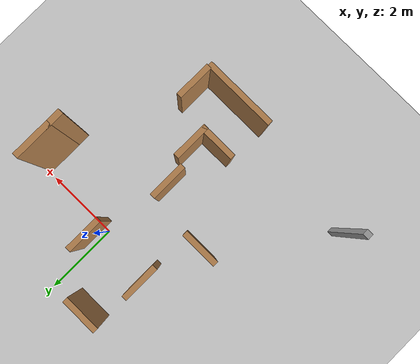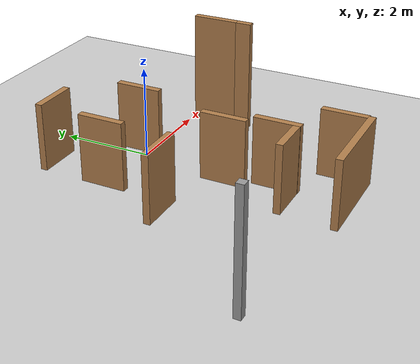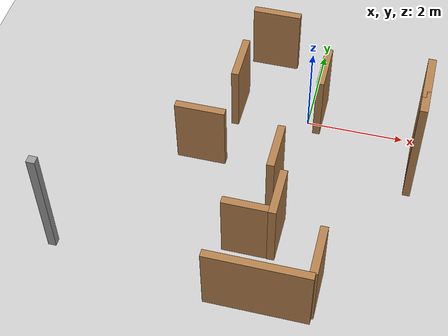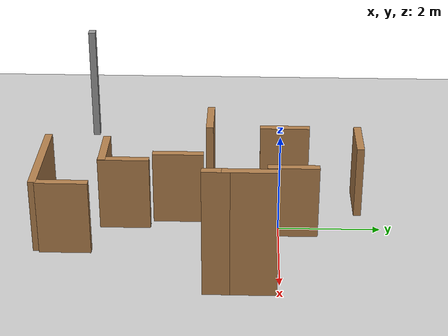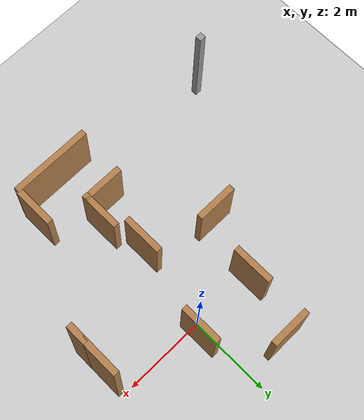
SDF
<sdf version="1.6">
 <world name="default">
  <model name="ground_plane">
   <static>1</static>
   <link name="link">
    <collision name="collision">
     <geometry><plane><normal>0 0 1</normal><size>100 100</size></plane></geometry>
     <surface><friction><ode><mu>100</mu><mu2>50</mu2></ode></friction></surface>
    </collision>
    <visual name="visual">
     <cast_shadows>0</cast_shadows>
     <geometry><plane><normal>0 0 1</normal><size>100 100</size></plane></geometry>
     <material>
      <script><uri>file://media/materials/scripts/gazebo.material</uri><name>Gazebo/Grey</name></script>
     </material>
    </visual>
   </link>
  </model>
  <model name="V_0">
   <pose>-1.92059 -1.40453 0 0 -0 0</pose>
   <link name="Wall_48">
    <collision name="Wall_48_Collision">
     <geometry><box><size>1 0.15 1.5</size></box></geometry>
     <pose>0 0 0.75 0 -0 0</pose>
    </collision>
    <visual name="Wall_48_Visual">
     <pose>0 0 0.75 0 -0 0</pose>
     <geometry><box><size>1 0.15 1.5</size></box></geometry>
     <material>
      <script><uri>file://media/materials/scripts/gazebo.material</uri><name>Gazebo/Wood</name></script>
      <ambient>1 1 1 1</ambient>
     </material>
     <meta><layer>0</layer></meta>
    </visual>
   </link>
   <static>1</static>
  </model>
  <model name="V_1">
   <pose>-1.04403 1.59361 0 0 -0 0</pose>
   <link name="Wall_48">
    <collision name="Wall_48_Collision">
     <geometry><box><size>1 0.15 1.5</size></box></geometry>
     <pose>0 0 0.75 0 -0 0</pose>
    </collision>
    <visual name="Wall_48_Visual">
     <pose>0 0 0.75 0 -0 0</pose>
     <geometry><box><size>1 0.15 1.5</size></box></geometry>
     <material>
      <script><uri>file://media/materials/scripts/gazebo.material</uri><name>Gazebo/Wood</name></script>
      <ambient>1 1 1 1</ambient>
     </material>
     <meta><layer>0</layer></meta>
    </visual>
   </link>
   <static>1</static>
  </model>
  <model name="HO_0">
   <pose>0.218896 0.2622 0 0 -0 0</pose>
   <link name="Wall_54">
    <collision name="Wall_54_Collision">
     <geometry><box><size>1 0.15 1.5</size></box></geometry>
     <pose>0 0 0.75 0 -0 0</pose>
    </collision>
    <visual name="Wall_54_Visual">
     <pose>0 0 0.75 0 -0 0</pose>
     <geometry><box><size>1 0.15 1.5</size></box></geometry>
     <material>
      <script><uri>file://media/materials/scripts/gazebo.material</uri><name>Gazebo/Wood</name></script>
      <ambient>1 1 1 1</ambient>
     </material>
     <meta><layer>0</layer></meta>
    </visual>
    <pose>0 0 0 0 -0 -1.5708</pose>
   </link>
   <static>1</static>
  </model>
  <model name="HO_1">
   <pose>-0.284507 -1.97832 0 0 -0 0</pose>
   <link name="Wall_54">
    <collision name="Wall_54_Collision">
     <geometry><box><size>1 0.15 1.5</size></box></geometry>
     <pose>0 0 0.75 0 -0 0</pose>
    </collision>
    <visual name="Wall_54_Visual">
     <pose>0 0 0.75 0 -0 0</pose>
     <geometry><box><size>1 0.15 1.5</size></box></geometry>
     <material>
      <script><uri>file://media/materials/scripts/gazebo.material</uri><name>Gazebo/Wood</name></script>
      <ambient>1 1 1 1</ambient>
     </material>
     <meta><layer>0</layer></meta>
    </visual>
    <pose>0 0 0 0 -0 -1.5708</pose>
   </link>
   <static>1</static>
  </model>
  <model name="HO_2">
   <pose>-1.48457 0.125075 0 0 -0 0</pose>
   <link name="Wall_54">
    <collision name="Wall_54_Collision">
     <geometry><box><size>1 0.15 1.5</size></box></geometry>
     <pose>0 0 0.75 0 -0 0</pose>
    </collision>
    <visual name="Wall_54_Visual">
     <pose>0 0 0.75 0 -0 0</pose>
     <geometry><box><size>1 0.15 1.5</size></box></geometry>
     <material>
      <script><uri>file://media/materials/scripts/gazebo.material</uri><name>Gazebo/Wood</name></script>
      <ambient>1 1 1 1</ambient>
     </material>
     <meta><layer>0</layer></meta>
    </visual>
    <pose>0 0 0 0 -0 -1.5708</pose>
   </link>
   <static>1</static>
  </model>
  <model name="wall_v">
   <pose>-0.02525 -4.62227 0 0 -0 0</pose>
   <link name="Wall_43">
    <collision name="Wall_43_Collision">
     <geometry><box><size>2 0.15 1.5</size></box></geometry>
     <pose>0 0 0.75 0 -0 0</pose>
    </collision>
    <visual name="Wall_43_Visual">
     <pose>0 0 0.75 0 -0 0</pose>
     <geometry><box><size>2 0.15 1.5</size></box></geometry>
     <material>
      <script><uri>file://media/materials/scripts/gazebo.material</uri><name>Gazebo/Wood</name></script>
      <ambient>1 1 1 1</ambient>
     </material>
     <meta><layer>0</layer></meta>
    </visual>
   </link>
   <static>1</static>
  </model>
  <model name="HO">
   <pose>0.940383 -4.0765 0 0 -0 0</pose>
   <link name="Wall_54">
    <collision name="Wall_54_Collision">
     <geometry><box><size>1 0.15 1.5</size></box></geometry>
     <pose>0 0 0.75 0 -0 0</pose>
    </collision>
    <visual name="Wall_54_Visual">
     <pose>0 0 0.75 0 -0 0</pose>
     <geometry><box><size>1 0.15 1.5</size></box></geometry>
     <material>
      <script><uri>file://media/materials/scripts/gazebo.material</uri><name>Gazebo/Wood</name></script>
      <ambient>1 1 1 1</ambient>
     </material>
     <meta><layer>0</layer></meta>
    </visual>
    <pose>0 0 0 0 -0 -1.5708</pose>
   </link>
   <static>1</static>
  </model>
  <model name="HO_5">
   <pose>-0.01716 -3.01957 0 0 -0 0</pose>
   <link name="Wall_54">
    <collision name="Wall_54_Collision">
     <geometry><box><size>1 0.15 1.5</size></box></geometry>
     <pose>0 0 0.75 0 -0 0</pose>
    </collision>
    <visual name="Wall_54_Visual">
     <pose>0 0 0.75 0 -0 0</pose>
     <geometry><box><size>1 0.15 1.5</size></box></geometry>
     <material>
      <script><uri>file://media/materials/scripts/gazebo.material</uri><name>Gazebo/Wood</name></script>
      <ambient>1 1 1 1</ambient>
     </material>
     <meta><layer>0</layer></meta>
    </visual>
    <pose>0 0 0 0 -0 -1.5708</pose>
   </link>
   <static>1</static>
  </model>
  <model name="V_2">
   <pose>-0.468482 -3.43941 0 0 -0 0</pose>
   <link name="Wall_48">
    <collision name="Wall_48_Collision">
     <geometry><box><size>1 0.15 1.5</size></box></geometry>
     <pose>0 0 0.75 0 -0 0</pose>
    </collision>
    <visual name="Wall_48_Visual">
     <pose>0 0 0.75 0 -0 0</pose>
     <geometry><box><size>1 0.15 1.5</size></box></geometry>
     <material>
      <script><uri>file://media/materials/scripts/gazebo.material</uri><name>Gazebo/Wood</name></script>
      <ambient>1 1 1 1</ambient>
     </material>
     <meta><layer>0</layer></meta>
    </visual>
   </link>
   <static>1</static>
  </model>
  <model name="Untitled">
   <pose>-0.934955 -2.12012 0 0 -0 0</pose>
   <link name="Wall_1">
    <collision name="Wall_1_Collision">
     <geometry><box><size>0.16 0.15 2.5</size></box></geometry>
     <pose>0 0 1.25 0 -0 0</pose>
    </collision>
    <visual name="Wall_1_Visual">
     <pose>0 0 1.25 0 -0 0</pose>
     <geometry><box><size>0.16 0.15 2.5</size></box></geometry>
     <material>
      <script><uri>file://media/materials/scripts/gazebo.material</uri><name>Gazebo/Grey</name></script>
      <ambient>0 0 0 1</ambient>
     </material>
     <meta><layer>0</layer></meta>
    </visual>
    <pose>-3.19405 -1.98929 0 0 -0 0</pose>
   </link>
   <link name="Wall_14">
    <collision name="Wall_14_Collision">
     <geometry><box><size>1 0.15 2.5</size></box></geometry>
     <pose>0 0 1.25 0 -0 0</pose>
    </collision>
    <visual name="Wall_14_Visual">
     <pose>0 0 1.25 0 -0 0</pose>
     <geometry><box><size>1 0.15 2.5</size></box></geometry>
     <material>
      <script><uri>file://media/materials/scripts/gazebo.material</uri><name>Gazebo/Wood</name></script>
      <ambient>1 1 1 1</ambient>
     </material>
     <meta><layer>0</layer></meta>
    </visual>
    <pose>3.19904 1.56429 0 0 -0 -1.5708</pose>
   </link>
   <link name="Wall_16">
    <collision name="Wall_16_Collision">
     <geometry><box><size>0.5 0.15 2.5</size></box></geometry>
     <pose>0 0 1.25 0 -0 0</pose>
    </collision>
    <visual name="Wall_16_Visual">
     <pose>0 0 1.25 0 -0 0</pose>
     <geometry><box><size>0.5 0.15 2.5</size></box></geometry>
     <material>
      <script><uri>file://media/materials/scripts/gazebo.material</uri><name>Gazebo/Wood</name></script>
      <ambient>1 1 1 1</ambient>
     </material>
     <meta><layer>0</layer></meta>
    </visual>
    <pose>3.19904 0.964291 0 0 -0 -1.5708</pose>
   </link>
   <static>1</static>
  </model>
 </world>
</sdf>
